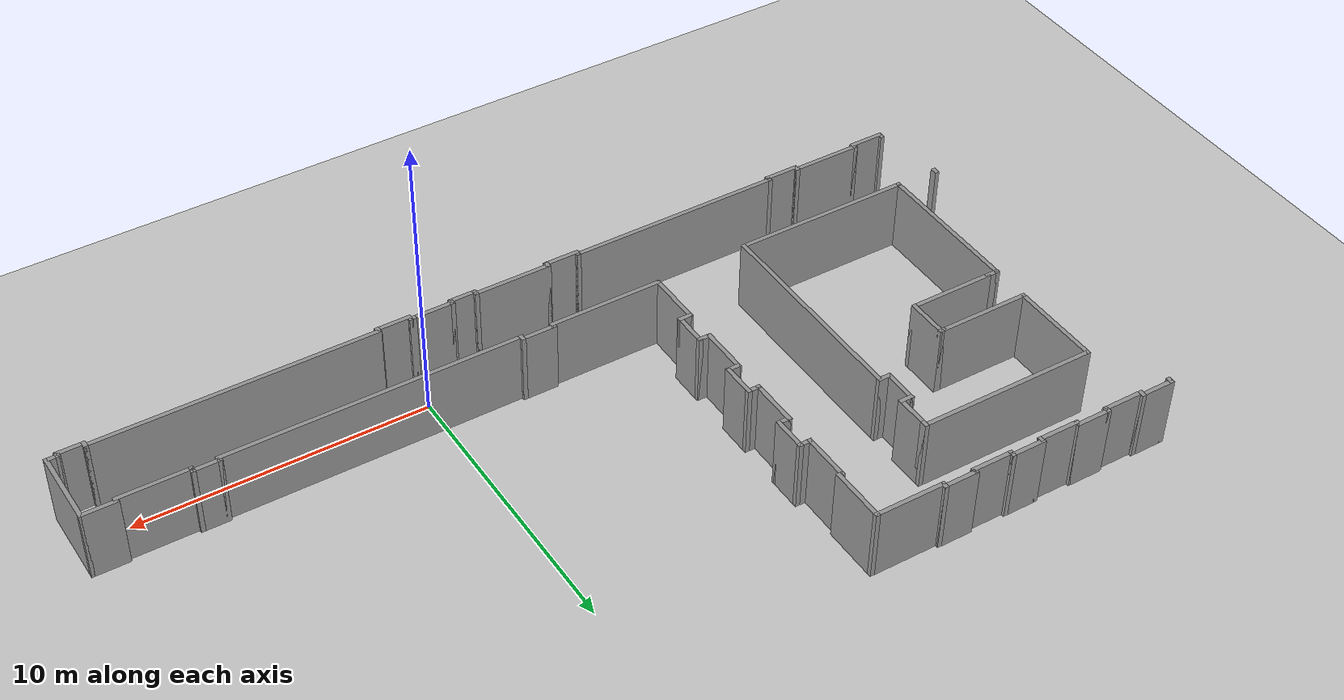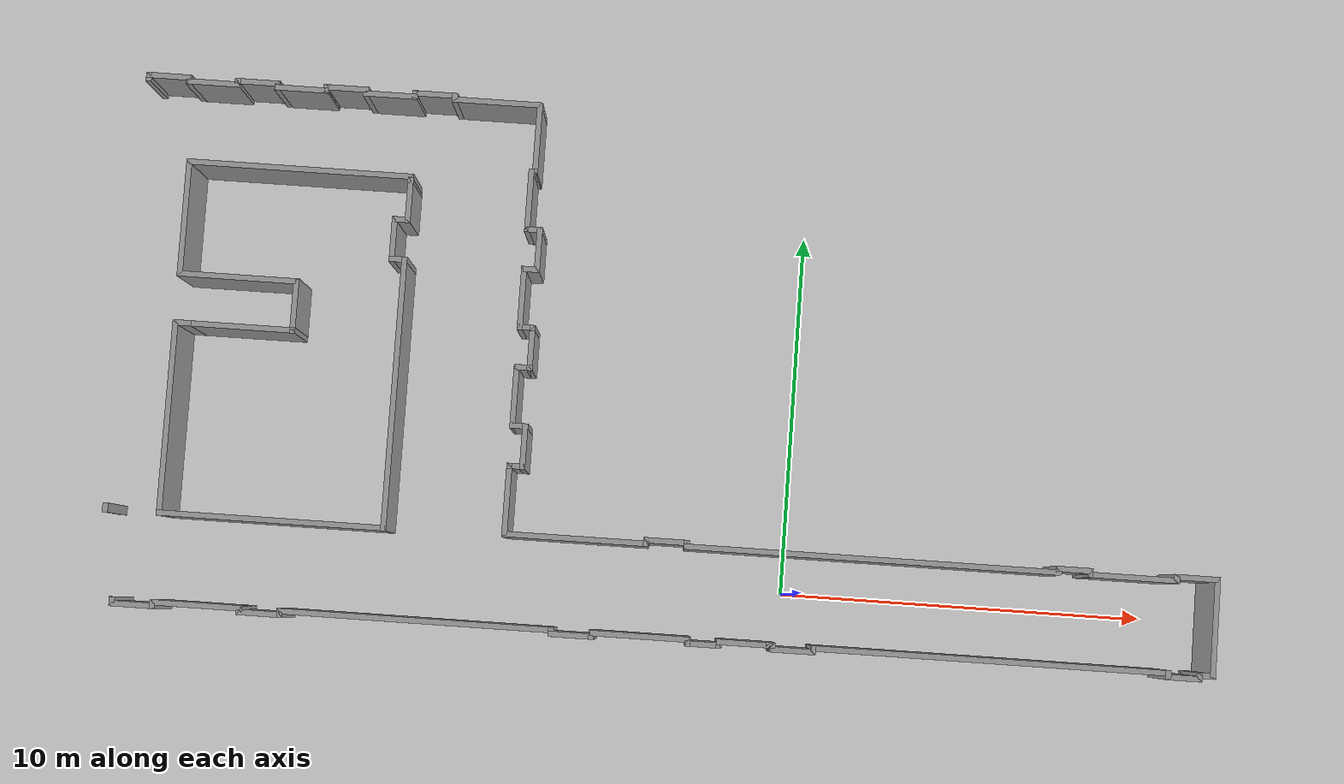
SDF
<sdf version="1.6">
 <world name="default">
  <model name="ground_plane">
   <static>1</static>
   <link name="link">
    <collision name="collision">
     <geometry><plane><normal>0 0 1</normal><size>100 100</size></plane></geometry>
     <surface><friction><ode><mu>100</mu><mu2>50</mu2></ode></friction></surface>
    </collision>
    <visual name="visual">
     <cast_shadows>0</cast_shadows>
     <geometry><plane><normal>0 0 1</normal><size>100 100</size></plane></geometry>
     <material>
      <script><uri>file://media/materials/scripts/gazebo.material</uri><name>Gazebo/Grey</name></script>
     </material>
    </visual>
   </link>
  </model>
  <model name="hallway">
   <pose>-18.4373 5.74333 0 0 -0 0</pose>
   <link name="Wall_158">
    <collision name="Wall_158_Collision">
     <geometry><box><size>0.25 0.15 2.5</size></box></geometry>
     <pose>0 0 1.25 0 -0 0</pose>
    </collision>
    <visual name="Wall_158_Visual">
     <pose>0 0 1.25 0 -0 0</pose>
     <geometry><box><size>0.25 0.15 2.5</size></box></geometry>
     <material>
      <script><uri>file://media/materials/scripts/gazebo.material</uri><name>Gazebo/Grey</name></script>
      <ambient>1 1 1 1</ambient>
     </material>
    </visual>
    <pose>-0.125 -4.68478 0 0 0 -1.5708</pose>
   </link>
   <link name="Wall_184">
    <collision name="Wall_184_Collision">
     <geometry><box><size>6.25 0.15 2.5</size></box></geometry>
     <pose>0 0 1.25 0 -0 0</pose>
    </collision>
    <visual name="Wall_184_Visual">
     <pose>0 0 1.25 0 -0 0</pose>
     <geometry><box><size>6.25 0.15 2.5</size></box></geometry>
     <material>
      <script><uri>file://media/materials/scripts/gazebo.material</uri><name>Gazebo/Grey</name></script>
      <ambient>1 1 1 1</ambient>
     </material>
    </visual>
    <pose>4.38892 -4.72399 0 0 -0 0</pose>
   </link>
   <link name="Wall_185">
    <collision name="Wall_185_Collision">
     <geometry><box><size>7.5 0.15 2.5</size></box></geometry>
     <pose>0 0 1.25 0 -0 0</pose>
    </collision>
    <visual name="Wall_185_Visual">
     <pose>0 0 1.25 0 -0 0</pose>
     <geometry><box><size>7.5 0.15 2.5</size></box></geometry>
     <material>
      <script><uri>file://media/materials/scripts/gazebo.material</uri><name>Gazebo/Grey</name></script>
      <ambient>1 1 1 1</ambient>
     </material>
    </visual>
    <pose>7.43892 -1.04899 0 0 -0 1.5708</pose>
   </link>
   <link name="Wall_187">
    <collision name="Wall_187_Collision">
     <geometry><box><size>0.5 0.15 2.5</size></box></geometry>
     <pose>0 0 1.25 0 -0 0</pose>
    </collision>
    <visual name="Wall_187_Visual">
     <pose>0 0 1.25 0 -0 0</pose>
     <geometry><box><size>0.5 0.15 2.5</size></box></geometry>
     <material>
      <script><uri>file://media/materials/scripts/gazebo.material</uri><name>Gazebo/Grey</name></script>
      <ambient>1 1 1 1</ambient>
     </material>
    </visual>
    <pose>7.26392 2.62601 0 0 -0 3.14159</pose>
   </link>
   <link name="Wall_188">
    <collision name="Wall_188_Collision">
     <geometry><box><size>1.25 0.15 2.5</size></box></geometry>
     <pose>0 0 1.25 0 -0 0</pose>
    </collision>
    <visual name="Wall_188_Visual">
     <pose>0 0 1.25 0 -0 0</pose>
     <geometry><box><size>1.25 0.15 2.5</size></box></geometry>
     <material>
      <script><uri>file://media/materials/scripts/gazebo.material</uri><name>Gazebo/Grey</name></script>
      <ambient>1 1 1 1</ambient>
     </material>
    </visual>
    <pose>7.08892 3.17601 0 0 -0 1.5708</pose>
   </link>
   <link name="Wall_192">
    <collision name="Wall_192_Collision">
     <geometry><box><size>0.5 0.15 2.5</size></box></geometry>
     <pose>0 0 1.25 0 -0 0</pose>
    </collision>
    <visual name="Wall_192_Visual">
     <pose>0 0 1.25 0 -0 0</pose>
     <geometry><box><size>0.5 0.15 2.5</size></box></geometry>
     <material>
      <script><uri>file://media/materials/scripts/gazebo.material</uri><name>Gazebo/Grey</name></script>
      <ambient>1 1 1 1</ambient>
     </material>
    </visual>
    <pose>7.26392 3.72601 0 0 -0 0</pose>
   </link>
   <link name="Wall_193">
    <collision name="Wall_193_Collision">
     <geometry><box><size>1.25 0.15 2.5</size></box></geometry>
     <pose>0 0 1.25 0 -0 0</pose>
    </collision>
    <visual name="Wall_193_Visual">
     <pose>0 0 1.25 0 -0 0</pose>
     <geometry><box><size>1.25 0.15 2.5</size></box></geometry>
     <material>
      <script><uri>file://media/materials/scripts/gazebo.material</uri><name>Gazebo/Grey</name></script>
      <ambient>1 1 1 1</ambient>
     </material>
    </visual>
    <pose>7.43892 4.27601 0 0 -0 1.5708</pose>
   </link>
   <link name="Wall_194">
    <collision name="Wall_194_Collision">
     <geometry><box><size>0.25 0.15 2.5</size></box></geometry>
     <pose>0 0 1.25 0 -0 0</pose>
    </collision>
    <visual name="Wall_194_Visual">
     <pose>0 0 1.25 0 -0 0</pose>
     <geometry><box><size>0.25 0.15 2.5</size></box></geometry>
     <material>
      <script><uri>file://media/materials/scripts/gazebo.material</uri><name>Gazebo/Grey</name></script>
      <ambient>1 1 1 1</ambient>
     </material>
    </visual>
    <pose>7.43892 4.87601 0 0 -0 1.5708</pose>
   </link>
   <link name="Wall_195">
    <collision name="Wall_195_Collision">
     <geometry><box><size>6.25 0.15 2.5</size></box></geometry>
     <pose>0 0 1.25 0 -0 0</pose>
    </collision>
    <visual name="Wall_195_Visual">
     <pose>0 0 1.25 0 -0 0</pose>
     <geometry><box><size>6.25 0.15 2.5</size></box></geometry>
     <material>
      <script><uri>file://media/materials/scripts/gazebo.material</uri><name>Gazebo/Grey</name></script>
      <ambient>1 1 1 1</ambient>
     </material>
    </visual>
    <pose>4.38892 4.92601 0 0 -0 3.14159</pose>
   </link>
   <link name="Wall_196">
    <collision name="Wall_196_Collision">
     <geometry><box><size>3.25 0.15 2.5</size></box></geometry>
     <pose>0 0 1.25 0 -0 0</pose>
    </collision>
    <visual name="Wall_196_Visual">
     <pose>0 0 1.25 0 -0 0</pose>
     <geometry><box><size>3.25 0.15 2.5</size></box></geometry>
     <material>
      <script><uri>file://media/materials/scripts/gazebo.material</uri><name>Gazebo/Grey</name></script>
      <ambient>1 1 1 1</ambient>
     </material>
    </visual>
    <pose>1.33892 3.37601 0 0 0 -1.5708</pose>
   </link>
   <link name="Wall_197">
    <collision name="Wall_197_Collision">
     <geometry><box><size>3.25 0.15 2.5</size></box></geometry>
     <pose>0 0 1.25 0 -0 0</pose>
    </collision>
    <visual name="Wall_197_Visual">
     <pose>0 0 1.25 0 -0 0</pose>
     <geometry><box><size>3.25 0.15 2.5</size></box></geometry>
     <material>
      <script><uri>file://media/materials/scripts/gazebo.material</uri><name>Gazebo/Grey</name></script>
      <ambient>1 1 1 1</ambient>
     </material>
    </visual>
    <pose>2.88892 1.82601 0 0 -0 0</pose>
   </link>
   <link name="Wall_198">
    <collision name="Wall_198_Collision">
     <geometry><box><size>0.25 0.15 2.5</size></box></geometry>
     <pose>0 0 1.25 0 -0 0</pose>
    </collision>
    <visual name="Wall_198_Visual">
     <pose>0 0 1.25 0 -0 0</pose>
     <geometry><box><size>0.25 0.15 2.5</size></box></geometry>
     <material>
      <script><uri>file://media/materials/scripts/gazebo.material</uri><name>Gazebo/Grey</name></script>
      <ambient>1 1 1 1</ambient>
     </material>
    </visual>
    <pose>4.48892 1.82601 0 0 -0 0</pose>
   </link>
   <link name="Wall_199">
    <collision name="Wall_199_Collision">
     <geometry><box><size>1.5 0.15 2.5</size></box></geometry>
     <pose>0 0 1.25 0 -0 0</pose>
    </collision>
    <visual name="Wall_199_Visual">
     <pose>0 0 1.25 0 -0 0</pose>
     <geometry><box><size>1.5 0.15 2.5</size></box></geometry>
     <material>
      <script><uri>file://media/materials/scripts/gazebo.material</uri><name>Gazebo/Grey</name></script>
      <ambient>1 1 1 1</ambient>
     </material>
    </visual>
    <pose>4.53892 1.15101 0 0 0 -1.5708</pose>
   </link>
   <link name="Wall_200">
    <collision name="Wall_200_Collision">
     <geometry><box><size>3 0.15 2.5</size></box></geometry>
     <pose>0 0 1.25 0 -0 0</pose>
    </collision>
    <visual name="Wall_200_Visual">
     <pose>0 0 1.25 0 -0 0</pose>
     <geometry><box><size>3 0.15 2.5</size></box></geometry>
     <material>
      <script><uri>file://media/materials/scripts/gazebo.material</uri><name>Gazebo/Grey</name></script>
      <ambient>1 1 1 1</ambient>
     </material>
    </visual>
    <pose>3.11392 0.476009 0 0 -0 3.14159</pose>
   </link>
   <link name="Wall_201">
    <collision name="Wall_201_Collision">
     <geometry><box><size>0.5 0.15 2.5</size></box></geometry>
     <pose>0 0 1.25 0 -0 0</pose>
    </collision>
    <visual name="Wall_201_Visual">
     <pose>0 0 1.25 0 -0 0</pose>
     <geometry><box><size>0.5 0.15 2.5</size></box></geometry>
     <material>
      <script><uri>file://media/materials/scripts/gazebo.material</uri><name>Gazebo/Grey</name></script>
      <ambient>1 1 1 1</ambient>
     </material>
    </visual>
    <pose>1.51392 0.476009 0 0 -0 3.14159</pose>
   </link>
   <link name="Wall_202">
    <collision name="Wall_202_Collision">
     <geometry><box><size>5.35 0.15 2.5</size></box></geometry>
     <pose>0 0 1.25 0 -0 0</pose>
    </collision>
    <visual name="Wall_202_Visual">
     <pose>0 0 1.25 0 -0 0</pose>
     <geometry><box><size>5.35 0.15 2.5</size></box></geometry>
     <material>
      <script><uri>file://media/materials/scripts/gazebo.material</uri><name>Gazebo/Grey</name></script>
      <ambient>1 1 1 1</ambient>
     </material>
    </visual>
    <pose>1.33892 -2.12399 0 0 0 -1.5708</pose>
   </link>
   <link name="Wall_25">
    <collision name="Wall_25_Collision">
     <geometry><box><size>0.25 0.15 2.5</size></box></geometry>
     <pose>0 0 1.25 0 -0 0</pose>
    </collision>
    <visual name="Wall_25_Visual">
     <pose>0 0 1.25 0 -0 0</pose>
     <geometry><box><size>0.25 0.15 2.5</size></box></geometry>
     <material>
      <script><uri>file://media/materials/scripts/gazebo.material</uri><name>Gazebo/Grey</name></script>
      <ambient>1 1 1 1</ambient>
     </material>
    </visual>
    <pose>0.275 -7.2 0 0 0 -1.5708</pose>
   </link>
   <link name="Wall_26">
    <collision name="Wall_26_Collision">
     <geometry><box><size>1.25 0.15 2.5</size></box></geometry>
     <pose>0 0 1.25 0 -0 0</pose>
    </collision>
    <visual name="Wall_26_Visual">
     <pose>0 0 1.25 0 -0 0</pose>
     <geometry><box><size>1.25 0.15 2.5</size></box></geometry>
     <material>
      <script><uri>file://media/materials/scripts/gazebo.material</uri><name>Gazebo/Grey</name></script>
      <ambient>1 1 1 1</ambient>
     </material>
    </visual>
    <pose>0.825 -7.25 0 0 -0 0</pose>
   </link>
   <link name="Wall_27">
    <collision name="Wall_27_Collision">
     <geometry><box><size>0.25 0.15 2.5</size></box></geometry>
     <pose>0 0 1.25 0 -0 0</pose>
    </collision>
    <visual name="Wall_27_Visual">
     <pose>0 0 1.25 0 -0 0</pose>
     <geometry><box><size>0.25 0.15 2.5</size></box></geometry>
     <material>
      <script><uri>file://media/materials/scripts/gazebo.material</uri><name>Gazebo/Grey</name></script>
      <ambient>1 1 1 1</ambient>
     </material>
    </visual>
    <pose>1.375 -7.2 0 0 -0 1.5708</pose>
   </link>
   <link name="Wall_28">
    <collision name="Wall_28_Collision">
     <geometry><box><size>2.5 0.15 2.5</size></box></geometry>
     <pose>0 0 1.25 0 -0 0</pose>
    </collision>
    <visual name="Wall_28_Visual">
     <pose>0 0 1.25 0 -0 0</pose>
     <geometry><box><size>2.5 0.15 2.5</size></box></geometry>
     <material>
      <script><uri>file://media/materials/scripts/gazebo.material</uri><name>Gazebo/Grey</name></script>
      <ambient>1 1 1 1</ambient>
     </material>
    </visual>
    <pose>2.55 -7.15 0 0 -0 0</pose>
   </link>
   <link name="Wall_29">
    <collision name="Wall_29_Collision">
     <geometry><box><size>0.25 0.15 2.5</size></box></geometry>
     <pose>0 0 1.25 0 -0 0</pose>
    </collision>
    <visual name="Wall_29_Visual">
     <pose>0 0 1.25 0 -0 0</pose>
     <geometry><box><size>0.25 0.15 2.5</size></box></geometry>
     <material>
      <script><uri>file://media/materials/scripts/gazebo.material</uri><name>Gazebo/Grey</name></script>
      <ambient>1 1 1 1</ambient>
     </material>
    </visual>
    <pose>3.725 -7.2 0 0 0 -1.5708</pose>
   </link>
   <link name="Wall_30">
    <collision name="Wall_30_Collision">
     <geometry><box><size>1.25 0.15 2.5</size></box></geometry>
     <pose>0 0 1.25 0 -0 0</pose>
    </collision>
    <visual name="Wall_30_Visual">
     <pose>0 0 1.25 0 -0 0</pose>
     <geometry><box><size>1.25 0.15 2.5</size></box></geometry>
     <material>
      <script><uri>file://media/materials/scripts/gazebo.material</uri><name>Gazebo/Grey</name></script>
      <ambient>1 1 1 1</ambient>
     </material>
    </visual>
    <pose>4.275 -7.25 0 0 -0 0</pose>
   </link>
   <link name="Wall_31">
    <collision name="Wall_31_Collision">
     <geometry><box><size>0.25 0.15 2.5</size></box></geometry>
     <pose>0 0 1.25 0 -0 0</pose>
    </collision>
    <visual name="Wall_31_Visual">
     <pose>0 0 1.25 0 -0 0</pose>
     <geometry><box><size>0.25 0.15 2.5</size></box></geometry>
     <material>
      <script><uri>file://media/materials/scripts/gazebo.material</uri><name>Gazebo/Grey</name></script>
      <ambient>1 1 1 1</ambient>
     </material>
    </visual>
    <pose>4.825 -7.2 0 0 -0 1.5708</pose>
   </link>
   <link name="Wall_32">
    <collision name="Wall_32_Collision">
     <geometry><box><size>7.5 0.15 2.5</size></box></geometry>
     <pose>0 0 1.25 0 -0 0</pose>
    </collision>
    <visual name="Wall_32_Visual">
     <pose>0 0 1.25 0 -0 0</pose>
     <geometry><box><size>7.5 0.15 2.5</size></box></geometry>
     <material>
      <script><uri>file://media/materials/scripts/gazebo.material</uri><name>Gazebo/Grey</name></script>
      <ambient>1 1 1 1</ambient>
     </material>
    </visual>
    <pose>8.5 -7.15 0 0 -0 0</pose>
   </link>
   <link name="Wall_33">
    <collision name="Wall_33_Collision">
     <geometry><box><size>0.25 0.15 2.5</size></box></geometry>
     <pose>0 0 1.25 0 -0 0</pose>
    </collision>
    <visual name="Wall_33_Visual">
     <pose>0 0 1.25 0 -0 0</pose>
     <geometry><box><size>0.25 0.15 2.5</size></box></geometry>
     <material>
      <script><uri>file://media/materials/scripts/gazebo.material</uri><name>Gazebo/Grey</name></script>
      <ambient>1 1 1 1</ambient>
     </material>
    </visual>
    <pose>12.175 -7.2 0 0 0 -1.5708</pose>
   </link>
   <link name="Wall_34">
    <collision name="Wall_34_Collision">
     <geometry><box><size>1.25 0.15 2.5</size></box></geometry>
     <pose>0 0 1.25 0 -0 0</pose>
    </collision>
    <visual name="Wall_34_Visual">
     <pose>0 0 1.25 0 -0 0</pose>
     <geometry><box><size>1.25 0.15 2.5</size></box></geometry>
     <material>
      <script><uri>file://media/materials/scripts/gazebo.material</uri><name>Gazebo/Grey</name></script>
      <ambient>1 1 1 1</ambient>
     </material>
    </visual>
    <pose>12.725 -7.25 0 0 -0 0</pose>
   </link>
   <link name="Wall_35">
    <collision name="Wall_35_Collision">
     <geometry><box><size>0.25 0.15 2.5</size></box></geometry>
     <pose>0 0 1.25 0 -0 0</pose>
    </collision>
    <visual name="Wall_35_Visual">
     <pose>0 0 1.25 0 -0 0</pose>
     <geometry><box><size>0.25 0.15 2.5</size></box></geometry>
     <material>
      <script><uri>file://media/materials/scripts/gazebo.material</uri><name>Gazebo/Grey</name></script>
      <ambient>1 1 1 1</ambient>
     </material>
    </visual>
    <pose>13.275 -7.2 0 0 -0 1.5708</pose>
   </link>
   <link name="Wall_36">
    <collision name="Wall_36_Collision">
     <geometry><box><size>2.75 0.15 2.5</size></box></geometry>
     <pose>0 0 1.25 0 -0 0</pose>
    </collision>
    <visual name="Wall_36_Visual">
     <pose>0 0 1.25 0 -0 0</pose>
     <geometry><box><size>2.75 0.15 2.5</size></box></geometry>
     <material>
      <script><uri>file://media/materials/scripts/gazebo.material</uri><name>Gazebo/Grey</name></script>
      <ambient>1 1 1 1</ambient>
     </material>
    </visual>
    <pose>14.575 -7.15 0 0 -0 0</pose>
   </link>
   <link name="Wall_37">
    <collision name="Wall_37_Collision">
     <geometry><box><size>0.25 0.15 2.5</size></box></geometry>
     <pose>0 0 1.25 0 -0 0</pose>
    </collision>
    <visual name="Wall_37_Visual">
     <pose>0 0 1.25 0 -0 0</pose>
     <geometry><box><size>0.25 0.15 2.5</size></box></geometry>
     <material>
      <script><uri>file://media/materials/scripts/gazebo.material</uri><name>Gazebo/Grey</name></script>
      <ambient>1 1 1 1</ambient>
     </material>
    </visual>
    <pose>15.875 -7.2 0 0 0 -1.5708</pose>
   </link>
   <link name="Wall_38">
    <collision name="Wall_38_Collision">
     <geometry><box><size>1 0.15 2.5</size></box></geometry>
     <pose>0 0 1.25 0 -0 0</pose>
    </collision>
    <visual name="Wall_38_Visual">
     <pose>0 0 1.25 0 -0 0</pose>
     <geometry><box><size>1 0.15 2.5</size></box></geometry>
     <material>
      <script><uri>file://media/materials/scripts/gazebo.material</uri><name>Gazebo/Grey</name></script>
      <ambient>1 1 1 1</ambient>
     </material>
    </visual>
    <pose>16.3 -7.25 0 0 -0 0</pose>
   </link>
   <link name="Wall_39">
    <collision name="Wall_39_Collision">
     <geometry><box><size>0.25 0.15 2.5</size></box></geometry>
     <pose>0 0 1.25 0 -0 0</pose>
    </collision>
    <visual name="Wall_39_Visual">
     <pose>0 0 1.25 0 -0 0</pose>
     <geometry><box><size>0.25 0.15 2.5</size></box></geometry>
     <material>
      <script><uri>file://media/materials/scripts/gazebo.material</uri><name>Gazebo/Grey</name></script>
      <ambient>1 1 1 1</ambient>
     </material>
    </visual>
    <pose>16.725 -7.2 0 0 -0 1.5708</pose>
   </link>
   <link name="Wall_40">
    <collision name="Wall_40_Collision">
     <geometry><box><size>1.5 0.15 2.5</size></box></geometry>
     <pose>0 0 1.25 0 -0 0</pose>
    </collision>
    <visual name="Wall_40_Visual">
     <pose>0 0 1.25 0 -0 0</pose>
     <geometry><box><size>1.5 0.15 2.5</size></box></geometry>
     <material>
      <script><uri>file://media/materials/scripts/gazebo.material</uri><name>Gazebo/Grey</name></script>
      <ambient>1 1 1 1</ambient>
     </material>
    </visual>
    <pose>17.4 -7.15 0 0 -0 0</pose>
   </link>
   <link name="Wall_42">
    <collision name="Wall_42_Collision">
     <geometry><box><size>0.25 0.15 2.5</size></box></geometry>
     <pose>0 0 1.25 0 -0 0</pose>
    </collision>
    <visual name="Wall_42_Visual">
     <pose>0 0 1.25 0 -0 0</pose>
     <geometry><box><size>0.25 0.15 2.5</size></box></geometry>
     <material>
      <script><uri>file://media/materials/scripts/gazebo.material</uri><name>Gazebo/Grey</name></script>
      <ambient>1 1 1 1</ambient>
     </material>
    </visual>
    <pose>18.125 -7.15 0 0 -0 0</pose>
   </link>
   <link name="Wall_43">
    <collision name="Wall_43_Collision">
     <geometry><box><size>0.25 0.15 2.5</size></box></geometry>
     <pose>0 0 1.25 0 -0 0</pose>
    </collision>
    <visual name="Wall_43_Visual">
     <pose>0 0 1.25 0 -0 0</pose>
     <geometry><box><size>0.25 0.15 2.5</size></box></geometry>
     <material>
      <script><uri>file://media/materials/scripts/gazebo.material</uri><name>Gazebo/Grey</name></script>
      <ambient>1 1 1 1</ambient>
     </material>
    </visual>
    <pose>18.175 -7.2 0 0 0 -1.5708</pose>
   </link>
   <link name="Wall_44">
    <collision name="Wall_44_Collision">
     <geometry><box><size>1.25 0.15 2.5</size></box></geometry>
     <pose>0 0 1.25 0 -0 0</pose>
    </collision>
    <visual name="Wall_44_Visual">
     <pose>0 0 1.25 0 -0 0</pose>
     <geometry><box><size>1.25 0.15 2.5</size></box></geometry>
     <material>
      <script><uri>file://media/materials/scripts/gazebo.material</uri><name>Gazebo/Grey</name></script>
      <ambient>1 1 1 1</ambient>
     </material>
    </visual>
    <pose>18.725 -7.25 0 0 -0 0</pose>
   </link>
   <link name="Wall_45">
    <collision name="Wall_45_Collision">
     <geometry><box><size>0.25 0.15 2.5</size></box></geometry>
     <pose>0 0 1.25 0 -0 0</pose>
    </collision>
    <visual name="Wall_45_Visual">
     <pose>0 0 1.25 0 -0 0</pose>
     <geometry><box><size>0.25 0.15 2.5</size></box></geometry>
     <material>
      <script><uri>file://media/materials/scripts/gazebo.material</uri><name>Gazebo/Grey</name></script>
      <ambient>1 1 1 1</ambient>
     </material>
    </visual>
    <pose>19.275 -7.2 0 0 -0 1.5708</pose>
   </link>
   <link name="Wall_46">
    <collision name="Wall_46_Collision">
     <geometry><box><size>9.75 0.15 2.5</size></box></geometry>
     <pose>0 0 1.25 0 -0 0</pose>
    </collision>
    <visual name="Wall_46_Visual">
     <pose>0 0 1.25 0 -0 0</pose>
     <geometry><box><size>9.75 0.15 2.5</size></box></geometry>
     <material>
      <script><uri>file://media/materials/scripts/gazebo.material</uri><name>Gazebo/Grey</name></script>
      <ambient>1 1 1 1</ambient>
     </material>
    </visual>
    <pose>24.075 -7.15 0 0 -0 0</pose>
   </link>
   <link name="Wall_47">
    <collision name="Wall_47_Collision">
     <geometry><box><size>0.25 0.15 2.5</size></box></geometry>
     <pose>0 0 1.25 0 -0 0</pose>
    </collision>
    <visual name="Wall_47_Visual">
     <pose>0 0 1.25 0 -0 0</pose>
     <geometry><box><size>0.25 0.15 2.5</size></box></geometry>
     <material>
      <script><uri>file://media/materials/scripts/gazebo.material</uri><name>Gazebo/Grey</name></script>
      <ambient>1 1 1 1</ambient>
     </material>
    </visual>
    <pose>28.875 -7.2 0 0 0 -1.5708</pose>
   </link>
   <link name="Wall_48">
    <collision name="Wall_48_Collision">
     <geometry><box><size>1 0.15 2.5</size></box></geometry>
     <pose>0 0 1.25 0 -0 0</pose>
    </collision>
    <visual name="Wall_48_Visual">
     <pose>0 0 1.25 0 -0 0</pose>
     <geometry><box><size>1 0.15 2.5</size></box></geometry>
     <material>
      <script><uri>file://media/materials/scripts/gazebo.material</uri><name>Gazebo/Grey</name></script>
      <ambient>1 1 1 1</ambient>
     </material>
    </visual>
    <pose>29.3 -7.25 0 0 -0 0</pose>
   </link>
   <link name="Wall_49">
    <collision name="Wall_49_Collision">
     <geometry><box><size>0.25 0.15 2.5</size></box></geometry>
     <pose>0 0 1.25 0 -0 0</pose>
    </collision>
    <visual name="Wall_49_Visual">
     <pose>0 0 1.25 0 -0 0</pose>
     <geometry><box><size>0.25 0.15 2.5</size></box></geometry>
     <material>
      <script><uri>file://media/materials/scripts/gazebo.material</uri><name>Gazebo/Grey</name></script>
      <ambient>1 1 1 1</ambient>
     </material>
    </visual>
    <pose>29.725 -7.2 0 0 -0 1.5708</pose>
   </link>
   <link name="Wall_50">
    <collision name="Wall_50_Collision">
     <geometry><box><size>0.5 0.15 2.5</size></box></geometry>
     <pose>0 0 1.25 0 -0 0</pose>
    </collision>
    <visual name="Wall_50_Visual">
     <pose>0 0 1.25 0 -0 0</pose>
     <geometry><box><size>0.5 0.15 2.5</size></box></geometry>
     <material>
      <script><uri>file://media/materials/scripts/gazebo.material</uri><name>Gazebo/Grey</name></script>
      <ambient>1 1 1 1</ambient>
     </material>
    </visual>
    <pose>29.9 -7.15 0 0 -0 0</pose>
   </link>
   <link name="Wall_51">
    <collision name="Wall_51_Collision">
     <geometry><box><size>2.75 0.15 2.5</size></box></geometry>
     <pose>0 0 1.25 0 -0 0</pose>
    </collision>
    <visual name="Wall_51_Visual">
     <pose>0 0 1.25 0 -0 0</pose>
     <geometry><box><size>2.75 0.15 2.5</size></box></geometry>
     <material>
      <script><uri>file://media/materials/scripts/gazebo.material</uri><name>Gazebo/Grey</name></script>
      <ambient>1 1 1 1</ambient>
     </material>
    </visual>
    <pose>30.075 -5.85 0 0 -0 1.5708</pose>
   </link>
   <link name="Wall_52">
    <collision name="Wall_52_Collision">
     <geometry><box><size>1.25 0.15 2.5</size></box></geometry>
     <pose>0 0 1.25 0 -0 0</pose>
    </collision>
    <visual name="Wall_52_Visual">
     <pose>0 0 1.25 0 -0 0</pose>
     <geometry><box><size>1.25 0.15 2.5</size></box></geometry>
     <material>
      <script><uri>file://media/materials/scripts/gazebo.material</uri><name>Gazebo/Grey</name></script>
      <ambient>1 1 1 1</ambient>
     </material>
    </visual>
    <pose>29.525 -4.55 0 0 -0 3.14159</pose>
   </link>
   <link name="Wall_53">
    <collision name="Wall_53_Collision">
     <geometry><box><size>0.25 0.15 2.5</size></box></geometry>
     <pose>0 0 1.25 0 -0 0</pose>
    </collision>
    <visual name="Wall_53_Visual">
     <pose>0 0 1.25 0 -0 0</pose>
     <geometry><box><size>0.25 0.15 2.5</size></box></geometry>
     <material>
      <script><uri>file://media/materials/scripts/gazebo.material</uri><name>Gazebo/Grey</name></script>
      <ambient>1 1 1 1</ambient>
     </material>
    </visual>
    <pose>28.975 -4.6 0 0 0 -1.5708</pose>
   </link>
   <link name="Wall_54">
    <collision name="Wall_54_Collision">
     <geometry><box><size>2.5 0.15 2.5</size></box></geometry>
     <pose>0 0 1.25 0 -0 0</pose>
    </collision>
    <visual name="Wall_54_Visual">
     <pose>0 0 1.25 0 -0 0</pose>
     <geometry><box><size>2.5 0.15 2.5</size></box></geometry>
     <material>
      <script><uri>file://media/materials/scripts/gazebo.material</uri><name>Gazebo/Grey</name></script>
      <ambient>1 1 1 1</ambient>
     </material>
    </visual>
    <pose>27.8 -4.65 0 0 -0 3.14159</pose>
   </link>
   <link name="Wall_55">
    <collision name="Wall_55_Collision">
     <geometry><box><size>0.25 0.15 2.5</size></box></geometry>
     <pose>0 0 1.25 0 -0 0</pose>
    </collision>
    <visual name="Wall_55_Visual">
     <pose>0 0 1.25 0 -0 0</pose>
     <geometry><box><size>0.25 0.15 2.5</size></box></geometry>
     <material>
      <script><uri>file://media/materials/scripts/gazebo.material</uri><name>Gazebo/Grey</name></script>
      <ambient>1 1 1 1</ambient>
     </material>
    </visual>
    <pose>26.625 -4.6 0 0 -0 1.5708</pose>
   </link>
   <link name="Wall_56">
    <collision name="Wall_56_Collision">
     <geometry><box><size>1 0.15 2.5</size></box></geometry>
     <pose>0 0 1.25 0 -0 0</pose>
    </collision>
    <visual name="Wall_56_Visual">
     <pose>0 0 1.25 0 -0 0</pose>
     <geometry><box><size>1 0.15 2.5</size></box></geometry>
     <material>
      <script><uri>file://media/materials/scripts/gazebo.material</uri><name>Gazebo/Grey</name></script>
      <ambient>1 1 1 1</ambient>
     </material>
    </visual>
    <pose>26.2 -4.55 0 0 -0 3.14159</pose>
   </link>
   <link name="Wall_57">
    <collision name="Wall_57_Collision">
     <geometry><box><size>0.25 0.15 2.5</size></box></geometry>
     <pose>0 0 1.25 0 -0 0</pose>
    </collision>
    <visual name="Wall_57_Visual">
     <pose>0 0 1.25 0 -0 0</pose>
     <geometry><box><size>0.25 0.15 2.5</size></box></geometry>
     <material>
      <script><uri>file://media/materials/scripts/gazebo.material</uri><name>Gazebo/Grey</name></script>
      <ambient>1 1 1 1</ambient>
     </material>
    </visual>
    <pose>25.775 -4.6 0 0 0 -1.5708</pose>
   </link>
   <link name="Wall_58">
    <collision name="Wall_58_Collision">
     <geometry><box><size>10.25 0.15 2.5</size></box></geometry>
     <pose>0 0 1.25 0 -0 0</pose>
    </collision>
    <visual name="Wall_58_Visual">
     <pose>0 0 1.25 0 -0 0</pose>
     <geometry><box><size>10.25 0.15 2.5</size></box></geometry>
     <material>
      <script><uri>file://media/materials/scripts/gazebo.material</uri><name>Gazebo/Grey</name></script>
      <ambient>1 1 1 1</ambient>
     </material>
    </visual>
    <pose>20.725 -4.65 0 0 -0 3.14159</pose>
   </link>
   <link name="Wall_59">
    <collision name="Wall_59_Collision">
     <geometry><box><size>0.25 0.15 2.5</size></box></geometry>
     <pose>0 0 1.25 0 -0 0</pose>
    </collision>
    <visual name="Wall_59_Visual">
     <pose>0 0 1.25 0 -0 0</pose>
     <geometry><box><size>0.25 0.15 2.5</size></box></geometry>
     <material>
      <script><uri>file://media/materials/scripts/gazebo.material</uri><name>Gazebo/Grey</name></script>
      <ambient>1 1 1 1</ambient>
     </material>
    </visual>
    <pose>15.675 -4.6 0 0 -0 1.5708</pose>
   </link>
   <link name="Wall_60">
    <collision name="Wall_60_Collision">
     <geometry><box><size>1.25 0.15 2.5</size></box></geometry>
     <pose>0 0 1.25 0 -0 0</pose>
    </collision>
    <visual name="Wall_60_Visual">
     <pose>0 0 1.25 0 -0 0</pose>
     <geometry><box><size>1.25 0.15 2.5</size></box></geometry>
     <material>
      <script><uri>file://media/materials/scripts/gazebo.material</uri><name>Gazebo/Grey</name></script>
      <ambient>1 1 1 1</ambient>
     </material>
    </visual>
    <pose>15.125 -4.55 0 0 -0 3.14159</pose>
   </link>
   <link name="Wall_61">
    <collision name="Wall_61_Collision">
     <geometry><box><size>0.25 0.15 2.5</size></box></geometry>
     <pose>0 0 1.25 0 -0 0</pose>
    </collision>
    <visual name="Wall_61_Visual">
     <pose>0 0 1.25 0 -0 0</pose>
     <geometry><box><size>0.25 0.15 2.5</size></box></geometry>
     <material>
      <script><uri>file://media/materials/scripts/gazebo.material</uri><name>Gazebo/Grey</name></script>
      <ambient>1 1 1 1</ambient>
     </material>
    </visual>
    <pose>14.575 -4.6 0 0 0 -1.5708</pose>
   </link>
   <link name="Wall_62">
    <collision name="Wall_62_Collision">
     <geometry><box><size>4 0.15 2.5</size></box></geometry>
     <pose>0 0 1.25 0 -0 0</pose>
    </collision>
    <visual name="Wall_62_Visual">
     <pose>0 0 1.25 0 -0 0</pose>
     <geometry><box><size>4 0.15 2.5</size></box></geometry>
     <material>
      <script><uri>file://media/materials/scripts/gazebo.material</uri><name>Gazebo/Grey</name></script>
      <ambient>1 1 1 1</ambient>
     </material>
    </visual>
    <pose>12.65 -4.65 0 0 -0 3.14159</pose>
   </link>
   <link name="Wall_64">
    <collision name="Wall_64_Collision">
     <geometry><box><size>2 0.15 2.5</size></box></geometry>
     <pose>0 0 1.25 0 -0 0</pose>
    </collision>
    <visual name="Wall_64_Visual">
     <pose>0 0 1.25 0 -0 0</pose>
     <geometry><box><size>2 0.15 2.5</size></box></geometry>
     <material>
      <script><uri>file://media/materials/scripts/gazebo.material</uri><name>Gazebo/Grey</name></script>
      <ambient>1 1 1 1</ambient>
     </material>
    </visual>
    <pose>10.725 -3.725 0 0 -0 1.5708</pose>
   </link>
   <link name="Wall_65">
    <collision name="Wall_65_Collision">
     <geometry><box><size>0.5 0.15 2.5</size></box></geometry>
     <pose>0 0 1.25 0 -0 0</pose>
    </collision>
    <visual name="Wall_65_Visual">
     <pose>0 0 1.25 0 -0 0</pose>
     <geometry><box><size>0.5 0.15 2.5</size></box></geometry>
     <material>
      <script><uri>file://media/materials/scripts/gazebo.material</uri><name>Gazebo/Grey</name></script>
      <ambient>1 1 1 1</ambient>
     </material>
    </visual>
    <pose>10.9 -2.8 0 0 -0 0</pose>
   </link>
   <link name="Wall_66">
    <collision name="Wall_66_Collision">
     <geometry><box><size>1.25 0.15 2.5</size></box></geometry>
     <pose>0 0 1.25 0 -0 0</pose>
    </collision>
    <visual name="Wall_66_Visual">
     <pose>0 0 1.25 0 -0 0</pose>
     <geometry><box><size>1.25 0.15 2.5</size></box></geometry>
     <material>
      <script><uri>file://media/materials/scripts/gazebo.material</uri><name>Gazebo/Grey</name></script>
      <ambient>1 1 1 1</ambient>
     </material>
    </visual>
    <pose>11.075 -2.25 0 0 -0 1.5708</pose>
   </link>
   <link name="Wall_67">
    <collision name="Wall_67_Collision">
     <geometry><box><size>0.5 0.15 2.5</size></box></geometry>
     <pose>0 0 1.25 0 -0 0</pose>
    </collision>
    <visual name="Wall_67_Visual">
     <pose>0 0 1.25 0 -0 0</pose>
     <geometry><box><size>0.5 0.15 2.5</size></box></geometry>
     <material>
      <script><uri>file://media/materials/scripts/gazebo.material</uri><name>Gazebo/Grey</name></script>
      <ambient>1 1 1 1</ambient>
     </material>
    </visual>
    <pose>10.9 -1.7 0 0 -0 3.14159</pose>
   </link>
   <link name="Wall_68">
    <collision name="Wall_68_Collision">
     <geometry><box><size>1.75 0.15 2.5</size></box></geometry>
     <pose>0 0 1.25 0 -0 0</pose>
    </collision>
    <visual name="Wall_68_Visual">
     <pose>0 0 1.25 0 -0 0</pose>
     <geometry><box><size>1.75 0.15 2.5</size></box></geometry>
     <material>
      <script><uri>file://media/materials/scripts/gazebo.material</uri><name>Gazebo/Grey</name></script>
      <ambient>1 1 1 1</ambient>
     </material>
    </visual>
    <pose>10.725 -0.9 0 0 -0 1.5708</pose>
   </link>
   <link name="Wall_69">
    <collision name="Wall_69_Collision">
     <geometry><box><size>0.5 0.15 2.5</size></box></geometry>
     <pose>0 0 1.25 0 -0 0</pose>
    </collision>
    <visual name="Wall_69_Visual">
     <pose>0 0 1.25 0 -0 0</pose>
     <geometry><box><size>0.5 0.15 2.5</size></box></geometry>
     <material>
      <script><uri>file://media/materials/scripts/gazebo.material</uri><name>Gazebo/Grey</name></script>
      <ambient>1 1 1 1</ambient>
     </material>
    </visual>
    <pose>10.9 -0.1 0 0 -0 0</pose>
   </link>
   <link name="Wall_70">
    <collision name="Wall_70_Collision">
     <geometry><box><size>1.25 0.15 2.5</size></box></geometry>
     <pose>0 0 1.25 0 -0 0</pose>
    </collision>
    <visual name="Wall_70_Visual">
     <pose>0 0 1.25 0 -0 0</pose>
     <geometry><box><size>1.25 0.15 2.5</size></box></geometry>
     <material>
      <script><uri>file://media/materials/scripts/gazebo.material</uri><name>Gazebo/Grey</name></script>
      <ambient>1 1 1 1</ambient>
     </material>
    </visual>
    <pose>11.075 0.45 0 0 -0 1.5708</pose>
   </link>
   <link name="Wall_71">
    <collision name="Wall_71_Collision">
     <geometry><box><size>0.5 0.15 2.5</size></box></geometry>
     <pose>0 0 1.25 0 -0 0</pose>
    </collision>
    <visual name="Wall_71_Visual">
     <pose>0 0 1.25 0 -0 0</pose>
     <geometry><box><size>0.5 0.15 2.5</size></box></geometry>
     <material>
      <script><uri>file://media/materials/scripts/gazebo.material</uri><name>Gazebo/Grey</name></script>
      <ambient>1 1 1 1</ambient>
     </material>
    </visual>
    <pose>10.9 1 0 0 -0 3.14159</pose>
   </link>
   <link name="Wall_73">
    <collision name="Wall_73_Collision">
     <geometry><box><size>1.75 0.15 2.5</size></box></geometry>
     <pose>0 0 1.25 0 -0 0</pose>
    </collision>
    <visual name="Wall_73_Visual">
     <pose>0 0 1.25 0 -0 0</pose>
     <geometry><box><size>1.75 0.15 2.5</size></box></geometry>
     <material>
      <script><uri>file://media/materials/scripts/gazebo.material</uri><name>Gazebo/Grey</name></script>
      <ambient>1 1 1 1</ambient>
     </material>
    </visual>
    <pose>10.725 1.8 0 0 -0 1.5708</pose>
   </link>
   <link name="Wall_74">
    <collision name="Wall_74_Collision">
     <geometry><box><size>0.5 0.15 2.5</size></box></geometry>
     <pose>0 0 1.25 0 -0 0</pose>
    </collision>
    <visual name="Wall_74_Visual">
     <pose>0 0 1.25 0 -0 0</pose>
     <geometry><box><size>0.5 0.15 2.5</size></box></geometry>
     <material>
      <script><uri>file://media/materials/scripts/gazebo.material</uri><name>Gazebo/Grey</name></script>
      <ambient>1 1 1 1</ambient>
     </material>
    </visual>
    <pose>10.9 2.6 0 0 -0 0</pose>
   </link>
   <link name="Wall_75">
    <collision name="Wall_75_Collision">
     <geometry><box><size>1.25 0.15 2.5</size></box></geometry>
     <pose>0 0 1.25 0 -0 0</pose>
    </collision>
    <visual name="Wall_75_Visual">
     <pose>0 0 1.25 0 -0 0</pose>
     <geometry><box><size>1.25 0.15 2.5</size></box></geometry>
     <material>
      <script><uri>file://media/materials/scripts/gazebo.material</uri><name>Gazebo/Grey</name></script>
      <ambient>1 1 1 1</ambient>
     </material>
    </visual>
    <pose>11.075 3.15 0 0 -0 1.5708</pose>
   </link>
   <link name="Wall_76">
    <collision name="Wall_76_Collision">
     <geometry><box><size>0.5 0.15 2.5</size></box></geometry>
     <pose>0 0 1.25 0 -0 0</pose>
    </collision>
    <visual name="Wall_76_Visual">
     <pose>0 0 1.25 0 -0 0</pose>
     <geometry><box><size>0.5 0.15 2.5</size></box></geometry>
     <material>
      <script><uri>file://media/materials/scripts/gazebo.material</uri><name>Gazebo/Grey</name></script>
      <ambient>1 1 1 1</ambient>
     </material>
    </visual>
    <pose>10.9 3.7 0 0 -0 3.14159</pose>
   </link>
   <link name="Wall_77">
    <collision name="Wall_77_Collision">
     <geometry><box><size>1.75 0.15 2.5</size></box></geometry>
     <pose>0 0 1.25 0 -0 0</pose>
    </collision>
    <visual name="Wall_77_Visual">
     <pose>0 0 1.25 0 -0 0</pose>
     <geometry><box><size>1.75 0.15 2.5</size></box></geometry>
     <material>
      <script><uri>file://media/materials/scripts/gazebo.material</uri><name>Gazebo/Grey</name></script>
      <ambient>1 1 1 1</ambient>
     </material>
    </visual>
    <pose>10.725 4.5 0 0 -0 1.5708</pose>
   </link>
   <link name="Wall_78">
    <collision name="Wall_78_Collision">
     <geometry><box><size>0.25 0.15 2.5</size></box></geometry>
     <pose>0 0 1.25 0 -0 0</pose>
    </collision>
    <visual name="Wall_78_Visual">
     <pose>0 0 1.25 0 -0 0</pose>
     <geometry><box><size>0.25 0.15 2.5</size></box></geometry>
     <material>
      <script><uri>file://media/materials/scripts/gazebo.material</uri><name>Gazebo/Grey</name></script>
      <ambient>1 1 1 1</ambient>
     </material>
    </visual>
    <pose>10.775 5.3 0 0 -0 0</pose>
   </link>
   <link name="Wall_79">
    <collision name="Wall_79_Collision">
     <geometry><box><size>2 0.15 2.5</size></box></geometry>
     <pose>0 0 1.25 0 -0 0</pose>
    </collision>
    <visual name="Wall_79_Visual">
     <pose>0 0 1.25 0 -0 0</pose>
     <geometry><box><size>2 0.15 2.5</size></box></geometry>
     <material>
      <script><uri>file://media/materials/scripts/gazebo.material</uri><name>Gazebo/Grey</name></script>
      <ambient>1 1 1 1</ambient>
     </material>
    </visual>
    <pose>10.825 6.225 0 0 -0 1.5708</pose>
   </link>
   <link name="Wall_80">
    <collision name="Wall_80_Collision">
     <geometry><box><size>2.5 0.15 2.5</size></box></geometry>
     <pose>0 0 1.25 0 -0 0</pose>
    </collision>
    <visual name="Wall_80_Visual">
     <pose>0 0 1.25 0 -0 0</pose>
     <geometry><box><size>2.5 0.15 2.5</size></box></geometry>
     <material>
      <script><uri>file://media/materials/scripts/gazebo.material</uri><name>Gazebo/Grey</name></script>
      <ambient>1 1 1 1</ambient>
     </material>
    </visual>
    <pose>9.65 7.15 0 0 -0 3.14159</pose>
   </link>
   <link name="Wall_81">
    <collision name="Wall_81_Collision">
     <geometry><box><size>0.25 0.15 2.5</size></box></geometry>
     <pose>0 0 1.25 0 -0 0</pose>
    </collision>
    <visual name="Wall_81_Visual">
     <pose>0 0 1.25 0 -0 0</pose>
     <geometry><box><size>0.25 0.15 2.5</size></box></geometry>
     <material>
      <script><uri>file://media/materials/scripts/gazebo.material</uri><name>Gazebo/Grey</name></script>
      <ambient>1 1 1 1</ambient>
     </material>
    </visual>
    <pose>8.475 7.2 0 0 -0 1.5708</pose>
   </link>
   <link name="Wall_82">
    <collision name="Wall_82_Collision">
     <geometry><box><size>1.25 0.15 2.5</size></box></geometry>
     <pose>0 0 1.25 0 -0 0</pose>
    </collision>
    <visual name="Wall_82_Visual">
     <pose>0 0 1.25 0 -0 0</pose>
     <geometry><box><size>1.25 0.15 2.5</size></box></geometry>
     <material>
      <script><uri>file://media/materials/scripts/gazebo.material</uri><name>Gazebo/Grey</name></script>
      <ambient>1 1 1 1</ambient>
     </material>
    </visual>
    <pose>7.925 7.25 0 0 -0 3.14159</pose>
   </link>
   <link name="Wall_83">
    <collision name="Wall_83_Collision">
     <geometry><box><size>0.25 0.15 2.5</size></box></geometry>
     <pose>0 0 1.25 0 -0 0</pose>
    </collision>
    <visual name="Wall_83_Visual">
     <pose>0 0 1.25 0 -0 0</pose>
     <geometry><box><size>0.25 0.15 2.5</size></box></geometry>
     <material>
      <script><uri>file://media/materials/scripts/gazebo.material</uri><name>Gazebo/Grey</name></script>
      <ambient>1 1 1 1</ambient>
     </material>
    </visual>
    <pose>7.375 7.2 0 0 0 -1.5708</pose>
   </link>
   <link name="Wall_84">
    <collision name="Wall_84_Collision">
     <geometry><box><size>1.5 0.15 2.5</size></box></geometry>
     <pose>0 0 1.25 0 -0 0</pose>
    </collision>
    <visual name="Wall_84_Visual">
     <pose>0 0 1.25 0 -0 0</pose>
     <geometry><box><size>1.5 0.15 2.5</size></box></geometry>
     <material>
      <script><uri>file://media/materials/scripts/gazebo.material</uri><name>Gazebo/Grey</name></script>
      <ambient>1 1 1 1</ambient>
     </material>
    </visual>
    <pose>6.7 7.15 0 0 -0 3.14159</pose>
   </link>
   <link name="Wall_85">
    <collision name="Wall_85_Collision">
     <geometry><box><size>0.25 0.15 2.5</size></box></geometry>
     <pose>0 0 1.25 0 -0 0</pose>
    </collision>
    <visual name="Wall_85_Visual">
     <pose>0 0 1.25 0 -0 0</pose>
     <geometry><box><size>0.25 0.15 2.5</size></box></geometry>
     <material>
      <script><uri>file://media/materials/scripts/gazebo.material</uri><name>Gazebo/Grey</name></script>
      <ambient>1 1 1 1</ambient>
     </material>
    </visual>
    <pose>6.025 7.2 0 0 -0 1.5708</pose>
   </link>
   <link name="Wall_86">
    <collision name="Wall_86_Collision">
     <geometry><box><size>1.25 0.15 2.5</size></box></geometry>
     <pose>0 0 1.25 0 -0 0</pose>
    </collision>
    <visual name="Wall_86_Visual">
     <pose>0 0 1.25 0 -0 0</pose>
     <geometry><box><size>1.25 0.15 2.5</size></box></geometry>
     <material>
      <script><uri>file://media/materials/scripts/gazebo.material</uri><name>Gazebo/Grey</name></script>
      <ambient>1 1 1 1</ambient>
     </material>
    </visual>
    <pose>5.475 7.25 0 0 -0 3.14159</pose>
   </link>
   <link name="Wall_87">
    <collision name="Wall_87_Collision">
     <geometry><box><size>0.25 0.15 2.5</size></box></geometry>
     <pose>0 0 1.25 0 -0 0</pose>
    </collision>
    <visual name="Wall_87_Visual">
     <pose>0 0 1.25 0 -0 0</pose>
     <geometry><box><size>0.25 0.15 2.5</size></box></geometry>
     <material>
      <script><uri>file://media/materials/scripts/gazebo.material</uri><name>Gazebo/Grey</name></script>
      <ambient>1 1 1 1</ambient>
     </material>
    </visual>
    <pose>4.925 7.2 0 0 0 -1.5708</pose>
   </link>
   <link name="Wall_88">
    <collision name="Wall_88_Collision">
     <geometry><box><size>1.5 0.15 2.5</size></box></geometry>
     <pose>0 0 1.25 0 -0 0</pose>
    </collision>
    <visual name="Wall_88_Visual">
     <pose>0 0 1.25 0 -0 0</pose>
     <geometry><box><size>1.5 0.15 2.5</size></box></geometry>
     <material>
      <script><uri>file://media/materials/scripts/gazebo.material</uri><name>Gazebo/Grey</name></script>
      <ambient>1 1 1 1</ambient>
     </material>
    </visual>
    <pose>4.25 7.15 0 0 -0 3.14159</pose>
   </link>
   <link name="Wall_89">
    <collision name="Wall_89_Collision">
     <geometry><box><size>0.25 0.15 2.5</size></box></geometry>
     <pose>0 0 1.25 0 -0 0</pose>
    </collision>
    <visual name="Wall_89_Visual">
     <pose>0 0 1.25 0 -0 0</pose>
     <geometry><box><size>0.25 0.15 2.5</size></box></geometry>
     <material>
      <script><uri>file://media/materials/scripts/gazebo.material</uri><name>Gazebo/Grey</name></script>
      <ambient>1 1 1 1</ambient>
     </material>
    </visual>
    <pose>3.575 7.2 0 0 -0 1.5708</pose>
   </link>
   <link name="Wall_90">
    <collision name="Wall_90_Collision">
     <geometry><box><size>1.25 0.15 2.5</size></box></geometry>
     <pose>0 0 1.25 0 -0 0</pose>
    </collision>
    <visual name="Wall_90_Visual">
     <pose>0 0 1.25 0 -0 0</pose>
     <geometry><box><size>1.25 0.15 2.5</size></box></geometry>
     <material>
      <script><uri>file://media/materials/scripts/gazebo.material</uri><name>Gazebo/Grey</name></script>
      <ambient>1 1 1 1</ambient>
     </material>
    </visual>
    <pose>3.025 7.25 0 0 -0 3.14159</pose>
   </link>
   <link name="Wall_91">
    <collision name="Wall_91_Collision">
     <geometry><box><size>0.25 0.15 2.5</size></box></geometry>
     <pose>0 0 1.25 0 -0 0</pose>
    </collision>
    <visual name="Wall_91_Visual">
     <pose>0 0 1.25 0 -0 0</pose>
     <geometry><box><size>0.25 0.15 2.5</size></box></geometry>
     <material>
      <script><uri>file://media/materials/scripts/gazebo.material</uri><name>Gazebo/Grey</name></script>
      <ambient>1 1 1 1</ambient>
     </material>
    </visual>
    <pose>2.475 7.2 0 0 0 -1.5708</pose>
   </link>
   <link name="Wall_92">
    <collision name="Wall_92_Collision">
     <geometry><box><size>1.5 0.15 2.5</size></box></geometry>
     <pose>0 0 1.25 0 -0 0</pose>
    </collision>
    <visual name="Wall_92_Visual">
     <pose>0 0 1.25 0 -0 0</pose>
     <geometry><box><size>1.5 0.15 2.5</size></box></geometry>
     <material>
      <script><uri>file://media/materials/scripts/gazebo.material</uri><name>Gazebo/Grey</name></script>
      <ambient>1 1 1 1</ambient>
     </material>
    </visual>
    <pose>1.8 7.15 0 0 -0 3.14159</pose>
   </link>
   <link name="Wall_93">
    <collision name="Wall_93_Collision">
     <geometry><box><size>0.25 0.15 2.5</size></box></geometry>
     <pose>0 0 1.25 0 -0 0</pose>
    </collision>
    <visual name="Wall_93_Visual">
     <pose>0 0 1.25 0 -0 0</pose>
     <geometry><box><size>0.25 0.15 2.5</size></box></geometry>
     <material>
      <script><uri>file://media/materials/scripts/gazebo.material</uri><name>Gazebo/Grey</name></script>
      <ambient>1 1 1 1</ambient>
     </material>
    </visual>
    <pose>1.125 7.2 0 0 -0 1.5708</pose>
   </link>
   <link name="Wall_94">
    <collision name="Wall_94_Collision">
     <geometry><box><size>1.25 0.15 2.5</size></box></geometry>
     <pose>0 0 1.25 0 -0 0</pose>
    </collision>
    <visual name="Wall_94_Visual">
     <pose>0 0 1.25 0 -0 0</pose>
     <geometry><box><size>1.25 0.15 2.5</size></box></geometry>
     <material>
      <script><uri>file://media/materials/scripts/gazebo.material</uri><name>Gazebo/Grey</name></script>
      <ambient>1 1 1 1</ambient>
     </material>
    </visual>
    <pose>0.575 7.25 0 0 -0 3.14159</pose>
   </link>
   <link name="Wall_95">
    <collision name="Wall_95_Collision">
     <geometry><box><size>0.25 0.15 2.5</size></box></geometry>
     <pose>0 0 1.25 0 -0 0</pose>
    </collision>
    <visual name="Wall_95_Visual">
     <pose>0 0 1.25 0 -0 0</pose>
     <geometry><box><size>0.25 0.15 2.5</size></box></geometry>
     <material>
      <script><uri>file://media/materials/scripts/gazebo.material</uri><name>Gazebo/Grey</name></script>
      <ambient>1 1 1 1</ambient>
     </material>
    </visual>
    <pose>0.025 7.2 0 0 0 -1.5708</pose>
   </link>
   <static>1</static>
  </model>
 </world>
</sdf>
